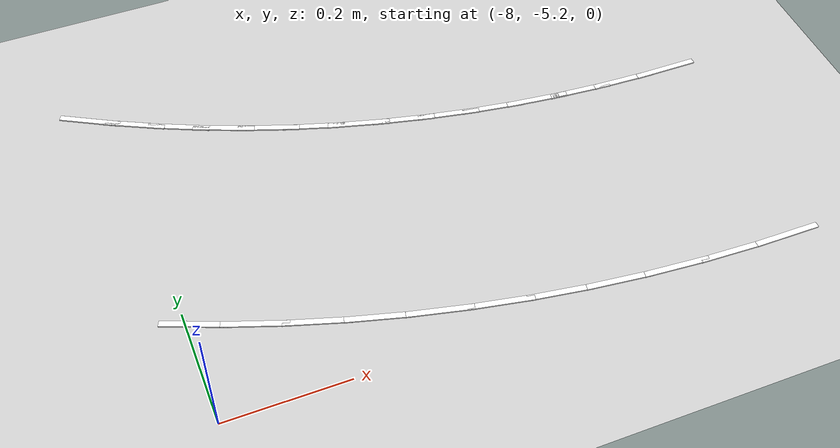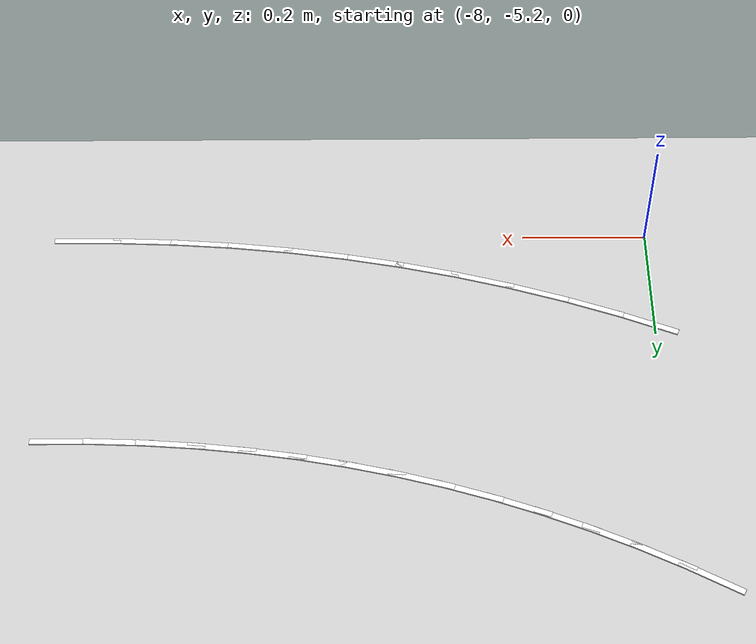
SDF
<sdf version="1.7">
 <world name="default">
  <model name="ground_plane">
   <static>1</static>
   <link name="link">
    <collision name="collision">
     <geometry><plane><normal>0 0 1</normal><size>100 100</size></plane></geometry>
     <surface>
      <contact><collide_bitmask>65535</collide_bitmask></contact>
      <friction><ode><mu>100</mu><mu2>50</mu2></ode></friction>
     </surface>
    </collision>
    <visual name="visual">
     <cast_shadows>0</cast_shadows>
     <geometry><plane><normal>0 0 1</normal><size>100 100</size></plane></geometry>
     <material>
      <script><uri>file://media/materials/scripts/gazebo.material</uri><name>Gazebo/Grey</name></script>
     </material>
    </visual>
   </link>
  </model>
  <model name="lane_line_left_423">
   <static>1</static>
   <link name="link">
    <pose>0 0 -0.004 0 -0 0</pose>
    <visual name="visual">
     <geometry><box><size>0.1038 0.01 0.01</size></box></geometry>
     <material><ambient>1 1 1 1</ambient><diffuse>1 1 1 1</diffuse></material>
    </visual>
    <collision name="collision"><geometry><box><size>0.1038 0.01 0.01</size></box></geometry></collision>
   </link>
   <pose>-8.04033 -4.55436 0 0 0 -0.509303</pose>
  </model>
  <model name="lane_line_left_424">
   <static>1</static>
   <link name="link">
    <pose>0 0 -0.004 0 -0 0</pose>
    <visual name="visual">
     <geometry><box><size>0.1035 0.01 0.01</size></box></geometry>
     <material><ambient>1 1 1 1</ambient><diffuse>1 1 1 1</diffuse></material>
    </visual>
    <collision name="collision"><geometry><box><size>0.1035 0.01 0.01</size></box></geometry></collision>
   </link>
   <pose>-7.97339 -4.59005 0 0 0 -0.470314</pose>
  </model>
  <model name="lane_line_left_425">
   <static>1</static>
   <link name="link">
    <pose>0 0 -0.004 0 -0 0</pose>
    <visual name="visual">
     <geometry><box><size>0.1034 0.01 0.01</size></box></geometry>
     <material><ambient>1 1 1 1</ambient><diffuse>1 1 1 1</diffuse></material>
    </visual>
    <collision name="collision"><geometry><box><size>0.1034 0.01 0.01</size></box></geometry></collision>
   </link>
   <pose>-7.90539 -4.62296 0 0 0 -0.430917</pose>
  </model>
  <model name="lane_line_left_426">
   <static>1</static>
   <link name="link">
    <pose>0 0 -0.004 0 -0 0</pose>
    <visual name="visual">
     <geometry><box><size>0.1033 0.01 0.01</size></box></geometry>
     <material><ambient>1 1 1 1</ambient><diffuse>1 1 1 1</diffuse></material>
    </visual>
    <collision name="collision"><geometry><box><size>0.1033 0.01 0.01</size></box></geometry></collision>
   </link>
   <pose>-7.83631 -4.65307 0 0 0 -0.391224</pose>
  </model>
  <model name="lane_line_right_426">
   <static>1</static>
   <link name="link">
    <pose>0 0 -0.004 0 -0 0</pose>
    <visual name="visual">
     <geometry><box><size>0.1033 0.01 0.01</size></box></geometry>
     <material><ambient>1 1 1 1</ambient><diffuse>1 1 1 1</diffuse></material>
    </visual>
    <collision name="collision"><geometry><box><size>0.1033 0.01 0.01</size></box></geometry></collision>
   </link>
   <pose>-7.98883 -5.02285 0 0 0 -0.391224</pose>
  </model>
  <model name="lane_line_left_427">
   <static>1</static>
   <link name="link">
    <pose>0 0 -0.004 0 -0 0</pose>
    <visual name="visual">
     <geometry><box><size>0.1033 0.01 0.01</size></box></geometry>
     <material><ambient>1 1 1 1</ambient><diffuse>1 1 1 1</diffuse></material>
    </visual>
    <collision name="collision"><geometry><box><size>0.1033 0.01 0.01</size></box></geometry></collision>
   </link>
   <pose>-7.76612 -4.6804 0 0 0 -0.351353</pose>
  </model>
  <model name="lane_line_right_427">
   <static>1</static>
   <link name="link">
    <pose>0 0 -0.004 0 -0 0</pose>
    <visual name="visual">
     <geometry><box><size>0.1033 0.01 0.01</size></box></geometry>
     <material><ambient>1 1 1 1</ambient><diffuse>1 1 1 1</diffuse></material>
    </visual>
    <collision name="collision"><geometry><box><size>0.1033 0.01 0.01</size></box></geometry></collision>
   </link>
   <pose>-7.90379 -5.05596 0 0 0 -0.351353</pose>
  </model>
  <model name="lane_line_left_428">
   <static>1</static>
   <link name="link">
    <pose>0 0 -0.004 0 -0 0</pose>
    <visual name="visual">
     <geometry><box><size>0.1035 0.01 0.01</size></box></geometry>
     <material><ambient>1 1 1 1</ambient><diffuse>1 1 1 1</diffuse></material>
    </visual>
    <collision name="collision"><geometry><box><size>0.1035 0.01 0.01</size></box></geometry></collision>
   </link>
   <pose>-7.69481 -4.70493 0 0 0 -0.311429</pose>
  </model>
  <model name="lane_line_right_428">
   <static>1</static>
   <link name="link">
    <pose>0 0 -0.004 0 -0 0</pose>
    <visual name="visual">
     <geometry><box><size>0.1035 0.01 0.01</size></box></geometry>
     <material><ambient>1 1 1 1</ambient><diffuse>1 1 1 1</diffuse></material>
    </visual>
    <collision name="collision"><geometry><box><size>0.1035 0.01 0.01</size></box></geometry></collision>
   </link>
   <pose>-7.81738 -5.08569 0 0 0 -0.311429</pose>
  </model>
  <model name="lane_line_left_429">
   <static>1</static>
   <link name="link">
    <pose>0 0 -0.004 0 -0 0</pose>
    <visual name="visual">
     <geometry><box><size>0.1038 0.01 0.01</size></box></geometry>
     <material><ambient>1 1 1 1</ambient><diffuse>1 1 1 1</diffuse></material>
    </visual>
    <collision name="collision"><geometry><box><size>0.1038 0.01 0.01</size></box></geometry></collision>
   </link>
   <pose>-7.62236 -4.72667 0 0 0 -0.271576</pose>
  </model>
  <model name="lane_line_right_429">
   <static>1</static>
   <link name="link">
    <pose>0 0 -0.004 0 -0 0</pose>
    <visual name="visual">
     <geometry><box><size>0.1038 0.01 0.01</size></box></geometry>
     <material><ambient>1 1 1 1</ambient><diffuse>1 1 1 1</diffuse></material>
    </visual>
    <collision name="collision"><geometry><box><size>0.1038 0.01 0.01</size></box></geometry></collision>
   </link>
   <pose>-7.72966 -5.11201 0 0 0 -0.271576</pose>
  </model>
  <model name="lane_line_left_430">
   <static>1</static>
   <link name="link">
    <pose>0 0 -0.004 0 -0 0</pose>
    <visual name="visual">
     <geometry><box><size>0.1042 0.01 0.01</size></box></geometry>
     <material><ambient>1 1 1 1</ambient><diffuse>1 1 1 1</diffuse></material>
    </visual>
    <collision name="collision"><geometry><box><size>0.1042 0.01 0.01</size></box></geometry></collision>
   </link>
   <pose>-7.54873 -4.7456 0 0 0 -0.231918</pose>
  </model>
  <model name="lane_line_right_430">
   <static>1</static>
   <link name="link">
    <pose>0 0 -0.004 0 -0 0</pose>
    <visual name="visual">
     <geometry><box><size>0.1042 0.01 0.01</size></box></geometry>
     <material><ambient>1 1 1 1</ambient><diffuse>1 1 1 1</diffuse></material>
    </visual>
    <collision name="collision"><geometry><box><size>0.1042 0.01 0.01</size></box></geometry></collision>
   </link>
   <pose>-7.64067 -5.13489 0 0 0 -0.231918</pose>
  </model>
  <model name="lane_line_left_431">
   <static>1</static>
   <link name="link">
    <pose>0 0 -0.004 0 -0 0</pose>
    <visual name="visual">
     <geometry><box><size>0.1047 0.01 0.01</size></box></geometry>
     <material><ambient>1 1 1 1</ambient><diffuse>1 1 1 1</diffuse></material>
    </visual>
    <collision name="collision"><geometry><box><size>0.1047 0.01 0.01</size></box></geometry></collision>
   </link>
   <pose>-7.47391 -4.76172 0 0 0 -0.192577</pose>
  </model>
  <model name="lane_line_right_431">
   <static>1</static>
   <link name="link">
    <pose>0 0 -0.004 0 -0 0</pose>
    <visual name="visual">
     <geometry><box><size>0.1047 0.01 0.01</size></box></geometry>
     <material><ambient>1 1 1 1</ambient><diffuse>1 1 1 1</diffuse></material>
    </visual>
    <collision name="collision"><geometry><box><size>0.1047 0.01 0.01</size></box></geometry></collision>
   </link>
   <pose>-7.55047 -5.15432 0 0 0 -0.192577</pose>
  </model>
  <model name="lane_line_left_432">
   <static>1</static>
   <link name="link">
    <pose>0 0 -0.004 0 -0 0</pose>
    <visual name="visual">
     <geometry><box><size>0.1053 0.01 0.01</size></box></geometry>
     <material><ambient>1 1 1 1</ambient><diffuse>1 1 1 1</diffuse></material>
    </visual>
    <collision name="collision"><geometry><box><size>0.1053 0.01 0.01</size></box></geometry></collision>
   </link>
   <pose>-7.39788 -4.77501 0 0 0 -0.153671</pose>
  </model>
  <model name="lane_line_right_432">
   <static>1</static>
   <link name="link">
    <pose>0 0 -0.004 0 -0 0</pose>
    <visual name="visual">
     <geometry><box><size>0.1053 0.01 0.01</size></box></geometry>
     <material><ambient>1 1 1 1</ambient><diffuse>1 1 1 1</diffuse></material>
    </visual>
    <collision name="collision"><geometry><box><size>0.1053 0.01 0.01</size></box></geometry></collision>
   </link>
   <pose>-7.45911 -5.1703 0 0 0 -0.153671</pose>
  </model>
  <model name="lane_line_left_433">
   <static>1</static>
   <link name="link">
    <pose>0 0 -0.004 0 -0 0</pose>
    <visual name="visual">
     <geometry><box><size>0.106 0.01 0.01</size></box></geometry>
     <material><ambient>1 1 1 1</ambient><diffuse>1 1 1 1</diffuse></material>
    </visual>
    <collision name="collision"><geometry><box><size>0.106 0.01 0.01</size></box></geometry></collision>
   </link>
   <pose>-7.3206 -4.78546 0 0 0 -0.11531</pose>
  </model>
  <model name="lane_line_right_433">
   <static>1</static>
   <link name="link">
    <pose>0 0 -0.004 0 -0 0</pose>
    <visual name="visual">
     <geometry><box><size>0.106 0.01 0.01</size></box></geometry>
     <material><ambient>1 1 1 1</ambient><diffuse>1 1 1 1</diffuse></material>
    </visual>
    <collision name="collision"><geometry><box><size>0.106 0.01 0.01</size></box></geometry></collision>
   </link>
   <pose>-7.36662 -5.1828 0 0 0 -0.11531</pose>
  </model>
  <model name="lane_line_left_434">
   <static>1</static>
   <link name="link">
    <pose>0 0 -0.004 0 -0 0</pose>
    <visual name="visual">
     <geometry><box><size>0.1069 0.01 0.01</size></box></geometry>
     <material><ambient>1 1 1 1</ambient><diffuse>1 1 1 1</diffuse></material>
    </visual>
    <collision name="collision"><geometry><box><size>0.1069 0.01 0.01</size></box></geometry></collision>
   </link>
   <pose>-7.24207 -4.79305 0 0 0 -0.077595</pose>
  </model>
  <model name="lane_line_right_434">
   <static>1</static>
   <link name="link">
    <pose>0 0 -0.004 0 -0 0</pose>
    <visual name="visual">
     <geometry><box><size>0.1069 0.01 0.01</size></box></geometry>
     <material><ambient>1 1 1 1</ambient><diffuse>1 1 1 1</diffuse></material>
    </visual>
    <collision name="collision"><geometry><box><size>0.1069 0.01 0.01</size></box></geometry></collision>
   </link>
   <pose>-7.27307 -5.19184 0 0 0 -0.077595</pose>
  </model>
  <model name="lane_line_left_435">
   <static>1</static>
   <link name="link">
    <pose>0 0 -0.004 0 -0 0</pose>
    <visual name="visual">
     <geometry><box><size>0.1078 0.01 0.01</size></box></geometry>
     <material><ambient>1 1 1 1</ambient><diffuse>1 1 1 1</diffuse></material>
    </visual>
    <collision name="collision"><geometry><box><size>0.1078 0.01 0.01</size></box></geometry></collision>
   </link>
   <pose>-7.16226 -4.79776 0 0 0 -0.040617</pose>
  </model>
  <model name="lane_line_right_435">
   <static>1</static>
   <link name="link">
    <pose>0 0 -0.004 0 -0 0</pose>
    <visual name="visual">
     <geometry><box><size>0.1078 0.01 0.01</size></box></geometry>
     <material><ambient>1 1 1 1</ambient><diffuse>1 1 1 1</diffuse></material>
    </visual>
    <collision name="collision"><geometry><box><size>0.1078 0.01 0.01</size></box></geometry></collision>
   </link>
   <pose>-7.1785 -5.19743 0 0 0 -0.040617</pose>
  </model>
  <model name="lane_line_left_436">
   <static>1</static>
   <link name="link">
    <pose>0 0 -0.004 0 -0 0</pose>
    <visual name="visual">
     <geometry><box><size>0.1089 0.01 0.01</size></box></geometry>
     <material><ambient>1 1 1 1</ambient><diffuse>1 1 1 1</diffuse></material>
    </visual>
    <collision name="collision"><geometry><box><size>0.1089 0.01 0.01</size></box></geometry></collision>
   </link>
   <pose>-7.08116 -4.79958 0 0 0 -0.004459</pose>
  </model>
  <model name="lane_line_right_436">
   <static>1</static>
   <link name="link">
    <pose>0 0 -0.004 0 -0 0</pose>
    <visual name="visual">
     <geometry><box><size>0.1089 0.01 0.01</size></box></geometry>
     <material><ambient>1 1 1 1</ambient><diffuse>1 1 1 1</diffuse></material>
    </visual>
    <collision name="collision"><geometry><box><size>0.1089 0.01 0.01</size></box></geometry></collision>
   </link>
   <pose>-7.08294 -5.19958 0 0 0 -0.004459</pose>
  </model>
 </world>
</sdf>
